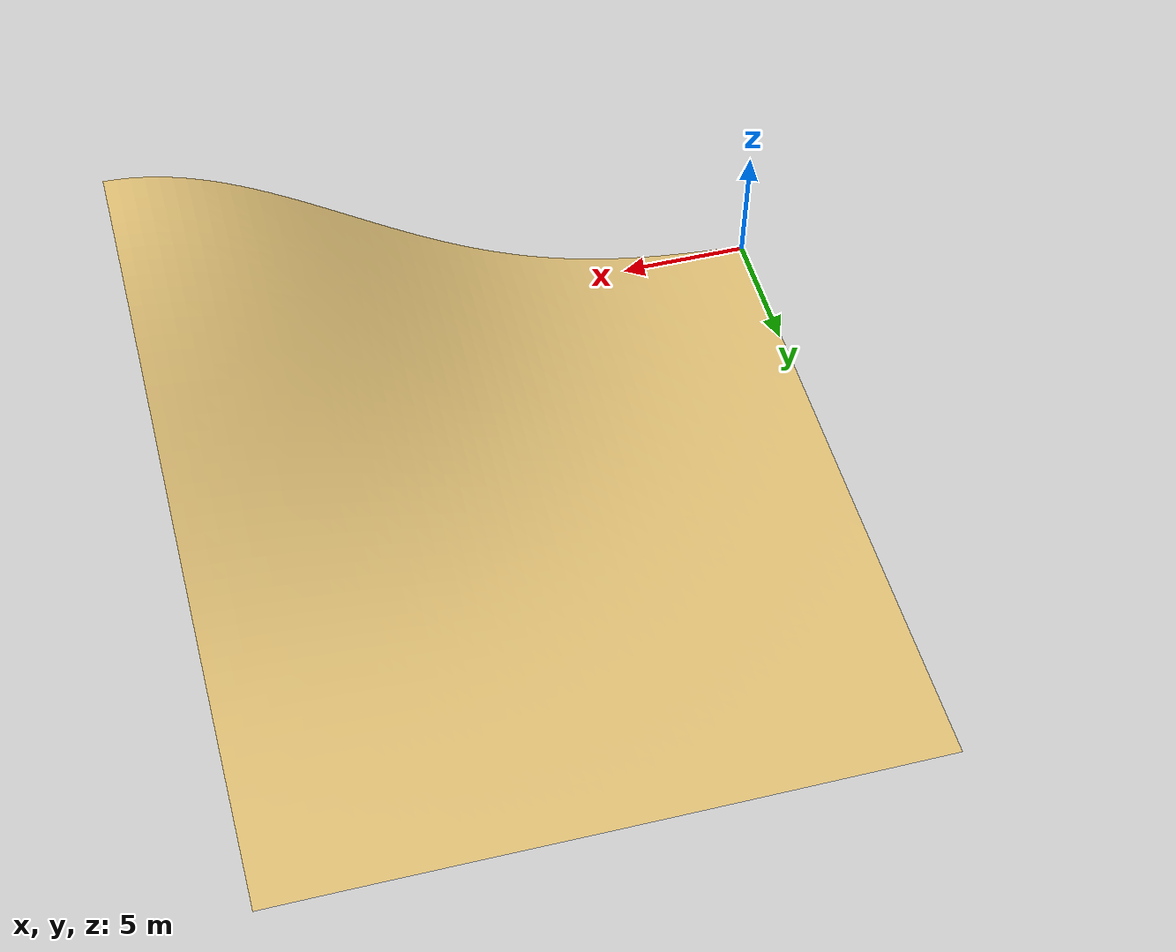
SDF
<?xml version="1.0"?>
<sdf version="1.10">
  <model name="dem_level_desert">
    <static>true</static>
    <link name="terrain_link">
      <visual name="terrain_visual">
        <geometry>
          <mesh>
            <uri>model://dem_level_desert/meshes/example_dem_100m_nw.dae</uri>
            <scale>0.5 0.5 1</scale>
          </mesh>
        </geometry>
        <material>
          <diffuse>0.84 0.72 0.44 1</diffuse>
          <pbr>
            <metal>
              <albedo_map>model://dem_level_desert/materials/textures/dem_level_desert.png</albedo_map>
            </metal>
          </pbr>
        </material>
      </visual>
      <collision name="terrain_collision">
        <geometry>
          <mesh>
            <uri>model://dem_level_desert/meshes/example_dem_100m_nw.dae</uri>
            <scale>0.5 0.5 1</scale>
          </mesh>
        </geometry>
      </collision>
    </link>
  </model>
</sdf>
